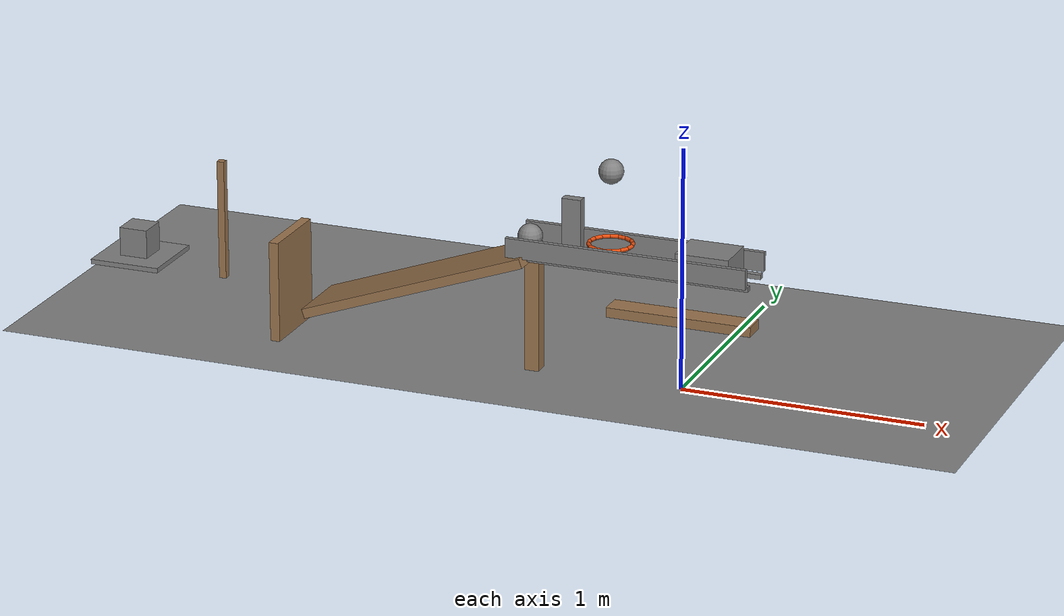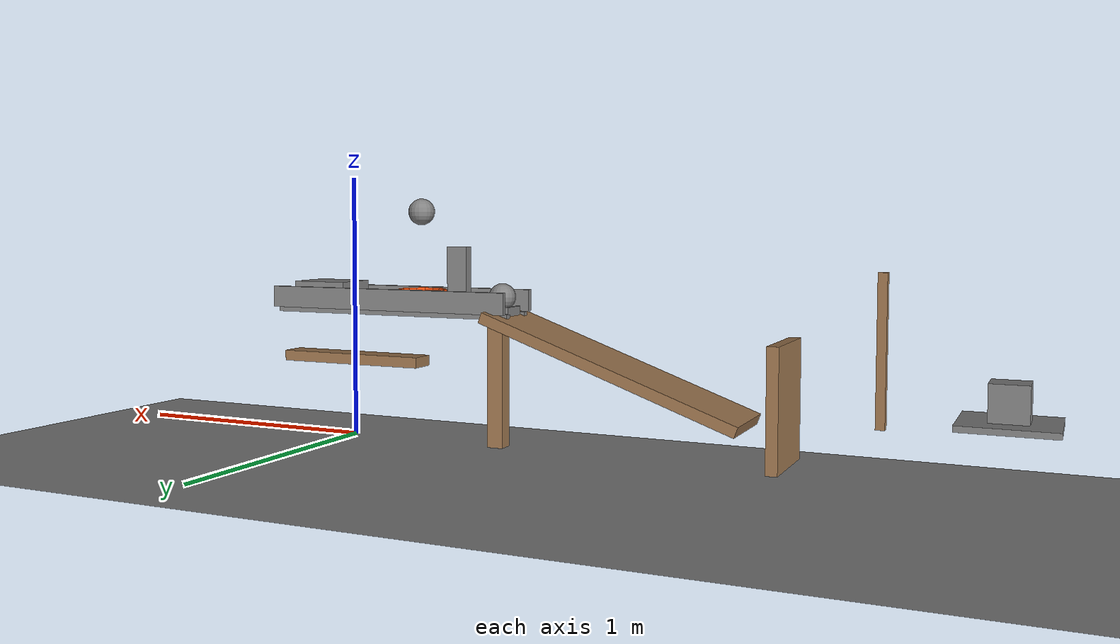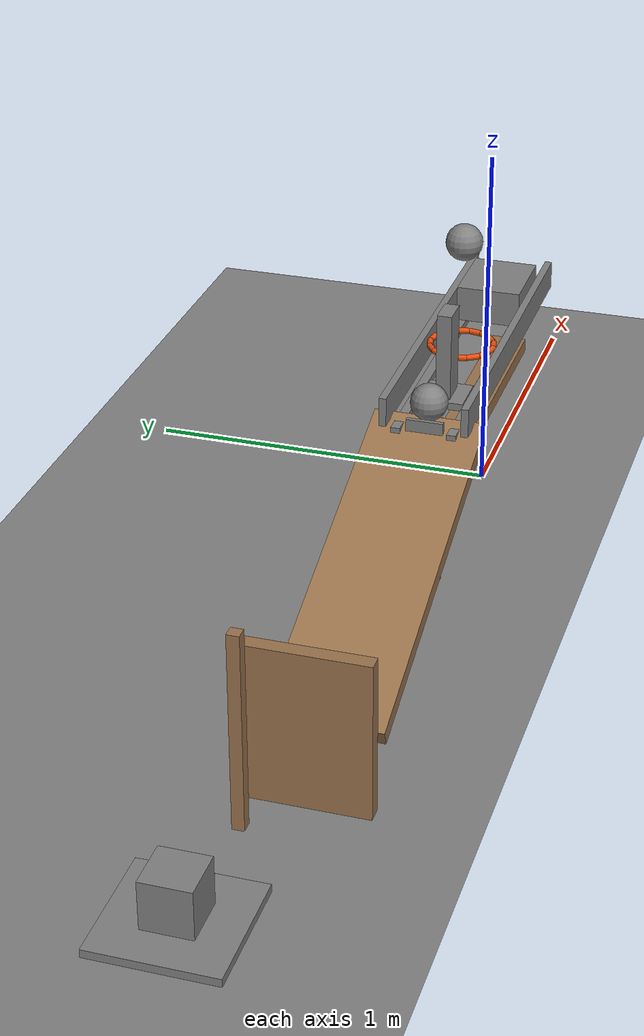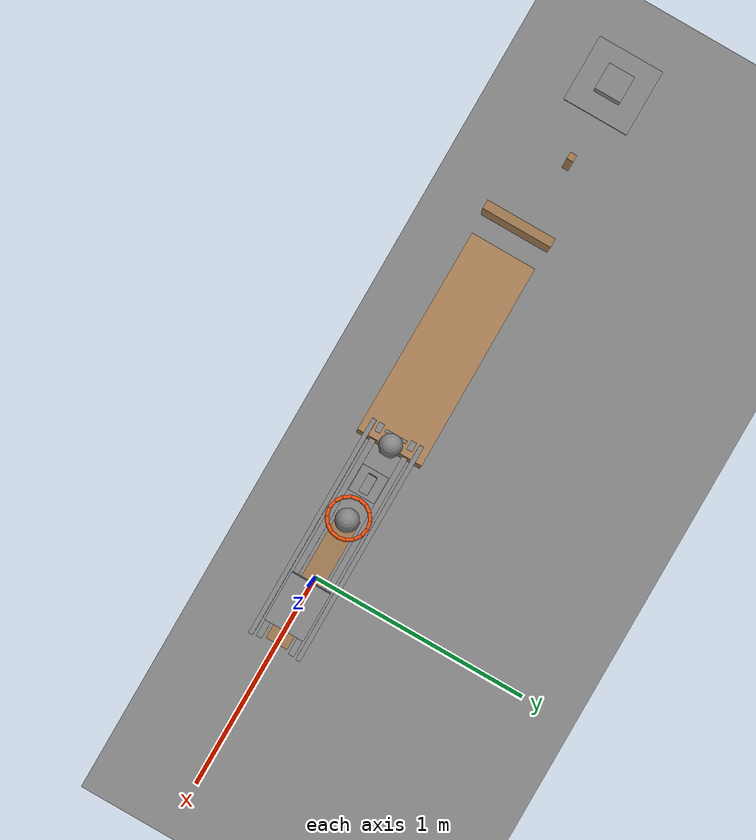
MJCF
<mujoco model="gravity_driven_chain">
  <compiler angle="radian"/>
  <option timestep="0.002"/>
  <worldbody>
    <geom name="floor" type="plane" size="6 6 0.1" friction="0.72 0.005 0.002"/>
    <body name="ring1">
      <geom name="ring1_00" type="capsule" size="0.008" fromto="-0.212 0 0.57 -0.218699 0.0336761 0.57" friction="0.72 0.005 0.0001" solref="0.01 1" rgba="0.9 0.3 0.05 1"/>
      <geom name="ring1_01" type="capsule" size="0.008" fromto="-0.218699 0.0336761 0.57 -0.237775 0.0622254 0.57" friction="0.72 0.005 0.0001" solref="0.01 1" rgba="0.9 0.3 0.05 1"/>
      <geom name="ring1_02" type="capsule" size="0.008" fromto="-0.237775 0.0622254 0.57 -0.266324 0.0813014 0.57" friction="0.72 0.005 0.0001" solref="0.01 1" rgba="0.9 0.3 0.05 1"/>
      <geom name="ring1_03" type="capsule" size="0.008" fromto="-0.266324 0.0813014 0.57 -0.3 0.088 0.57" friction="0.72 0.005 0.0001" solref="0.01 1" rgba="0.9 0.3 0.05 1"/>
      <geom name="ring1_04" type="capsule" size="0.008" fromto="-0.3 0.088 0.57 -0.333676 0.0813014 0.57" friction="0.72 0.005 0.0001" solref="0.01 1" rgba="0.9 0.3 0.05 1"/>
      <geom name="ring1_05" type="capsule" size="0.008" fromto="-0.333676 0.0813014 0.57 -0.362225 0.0622254 0.57" friction="0.72 0.005 0.0001" solref="0.01 1" rgba="0.9 0.3 0.05 1"/>
      <geom name="ring1_06" type="capsule" size="0.008" fromto="-0.362225 0.0622254 0.57 -0.381301 0.0336761 0.57" friction="0.72 0.005 0.0001" solref="0.01 1" rgba="0.9 0.3 0.05 1"/>
      <geom name="ring1_07" type="capsule" size="0.008" fromto="-0.381301 0.0336761 0.57 -0.388 1.07769e-17 0.57" friction="0.72 0.005 0.0001" solref="0.01 1" rgba="0.9 0.3 0.05 1"/>
      <geom name="ring1_08" type="capsule" size="0.008" fromto="-0.388 1.07769e-17 0.57 -0.381301 -0.0336761 0.57" friction="0.72 0.005 0.0001" solref="0.01 1" rgba="0.9 0.3 0.05 1"/>
      <geom name="ring1_09" type="capsule" size="0.008" fromto="-0.381301 -0.0336761 0.57 -0.362225 -0.0622254 0.57" friction="0.72 0.005 0.0001" solref="0.01 1" rgba="0.9 0.3 0.05 1"/>
      <geom name="ring1_10" type="capsule" size="0.008" fromto="-0.362225 -0.0622254 0.57 -0.333676 -0.0813014 0.57" friction="0.72 0.005 0.0001" solref="0.01 1" rgba="0.9 0.3 0.05 1"/>
      <geom name="ring1_11" type="capsule" size="0.008" fromto="-0.333676 -0.0813014 0.57 -0.3 -0.088 0.57" friction="0.72 0.005 0.0001" solref="0.01 1" rgba="0.9 0.3 0.05 1"/>
      <geom name="ring1_12" type="capsule" size="0.008" fromto="-0.3 -0.088 0.57 -0.266324 -0.0813014 0.57" friction="0.72 0.005 0.0001" solref="0.01 1" rgba="0.9 0.3 0.05 1"/>
      <geom name="ring1_13" type="capsule" size="0.008" fromto="-0.266324 -0.0813014 0.57 -0.237775 -0.0622254 0.57" friction="0.72 0.005 0.0001" solref="0.01 1" rgba="0.9 0.3 0.05 1"/>
      <geom name="ring1_14" type="capsule" size="0.008" fromto="-0.237775 -0.0622254 0.57 -0.218699 -0.0336761 0.57" friction="0.72 0.005 0.0001" solref="0.01 1" rgba="0.9 0.3 0.05 1"/>
      <geom name="ring1_15" type="capsule" size="0.008" fromto="-0.218699 -0.0336761 0.57 -0.212 -2.15538e-17 0.57" friction="0.72 0.005 0.0001" solref="0.01 1" rgba="0.9 0.3 0.05 1"/>
    </body>
    <body name="ball1" pos="-0.3 0 0.87">
      <freejoint/>
      <geom name="ball1" type="sphere" pos="0 0 0" size="0.05" mass="0.2" condim="6" friction="0.72 0.005 0.002" solref="0.01 1"/>
    </body>
    <body name="lever1" pos="0 0 0.3">
      <joint name="lever_hinge" type="hinge" pos="0 0 0" axis="0 1 0" limited="true" range="-0.785398 0" damping="0.04"/>
      <geom name="lever1" type="box" pos="0 0 0" size="0.3 0.05 0.02" mass="0.5" friction="0.72 0.005 0.0001" solref="0.01 1" rgba="0.6 0.45 0.3 1"/>
    </body>
    <body name="left slide rail">
      <geom name="left slide rail" type="box" pos="-0.2 0.075 0.49" size="0.5 0.0125 0.01" friction="0.72 0.005 0.0001" solref="0.01 1"/>
    </body>
    <body name="right slide rail">
      <geom name="right slide rail" type="box" pos="-0.2 -0.075 0.49" size="0.5 0.0125 0.01" friction="0.72 0.005 0.0001" solref="0.01 1"/>
    </body>
    <body name="left slide guide">
      <geom name="left slide guide" type="box" pos="-0.2 0.11 0.54" size="0.5 0.01 0.04" friction="0.72 0.005 0.0001" solref="0.01 1"/>
    </body>
    <body name="right slide guide">
      <geom name="right slide guide" type="box" pos="-0.2 -0.11 0.54" size="0.5 0.01 0.04" friction="0.72 0.005 0.0001" solref="0.01 1"/>
    </body>
    <body name="cart1" pos="0.11 0 0.55">
      <freejoint/>
      <geom name="cart1" type="box" pos="0 0 0" size="0.11 0.09 0.05" mass="0.5" friction="0.72 0.005 0.0001" solref="0.01 1"/>
    </body>
    <body name="domino pedestal">
      <geom name="domino pedestal" type="box" pos="-0.46 0 0.49" size="0.06 0.06 0.01" friction="0.72 0.005 0.0001" solref="0.01 1"/>
    </body>
    <body name="domino1" pos="-0.46 0 0.62">
      <freejoint/>
      <geom name="domino1" type="box" pos="0 0 0" size="0.04 0.02 0.12" mass="0.25" friction="0.72 0.005 0.0001" solref="0.01 1"/>
    </body>
    <body name="ramp1">
      <geom name="ramp1_deck" type="box" pos="-1.09275 0 0.32101" size="0.5 0.15 0.02" euler="0 2.79253 0" friction="0.72 0.005 0.002" solref="0.01 1" rgba="0.6 0.45 0.3 1"/>
      <geom name="ramp1_leg" type="box" pos="-0.622899 0 0.24601" size="0.03 0.03 0.24601" friction="0.72 0.005 0.002" solref="0.01 1" rgba="0.6 0.45 0.3 1"/>
    </body>
    <body name="ball2 retaining curb">
      <geom name="ball2 retaining curb" type="box" pos="-0.682 0 0.506" size="0.006 0.05 0.017" friction="0.72 0.005 0.0001" solref="0.01 1"/>
    </body>
    <body name="ball2" pos="-0.64 0 0.55779">
      <freejoint/>
      <geom name="ball2" type="sphere" pos="0 0 0" size="0.05" mass="0.2" condim="6" friction="0.72 0.005 0.002" solref="0.01 1"/>
    </body>
    <body name="door1" pos="-1.68259 0.16 0.23">
      <joint name="door_hinge" type="hinge" pos="0 0 0" axis="0 0 1" limited="true" range="-1.22173 0" damping="0.04"/>
      <geom name="door1" type="box" pos="0 -0.16 0" size="0.02 0.16 0.21" mass="0.45" friction="0.72 0.005 0.0001" solref="0.01 1" rgba="0.6 0.45 0.3 1"/>
    </body>
    <body name="pendulum1" pos="-2.004 0.05055 0.68">
      <joint name="pendulum_hinge" type="hinge" pos="0 0 0" axis="0 1 0" limited="true" range="0 0.663225" damping="0.04"/>
      <geom name="pendulum1" type="box" pos="0 0 -0.25" size="0.015 0.015 0.25" mass="0.35" friction="0.72 0.005 0.0001" solref="0.01 1" rgba="0.6 0.45 0.3 1"/>
    </body>
    <body name="block pedestal">
      <geom name="block pedestal" type="box" pos="-2.38365 0.05055 0.2252" size="0.15 0.15 0.01" friction="0.72 0.005 0.0001" solref="0.01 1"/>
    </body>
    <body name="block1" pos="-2.38365 0.05055 0.2952">
      <freejoint/>
      <geom name="block1" type="box" pos="0 0 0" size="0.06 0.06 0.06" mass="0.35" friction="0.72 0.005 0.0001" solref="0.01 1"/>
    </body>
  </worldbody>
  <keyframe>
    <key name="start" qpos="-0.3 0 0.87 1 0 0 0 0 0.11 0 0.55 1 0 0 0 -0.46 0 0.62 1 0 0 0 -0.64 0 0.55779 1 0 0 0 0 0 -2.38365 0.05055 0.2952 1 0 0 0" qvel="0 0 0 0 0 0 0 0 0 0 0 0 0 0 0 0 0 0 0 0 0 0 0 0 0 0 0 0 0 0 0 0 0"/>
  </keyframe>
</mujoco>
